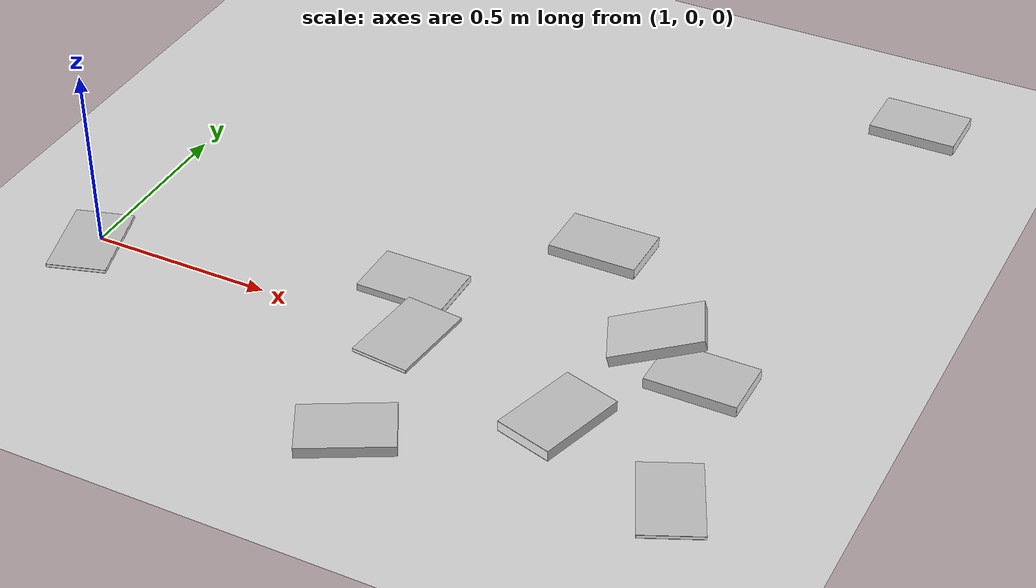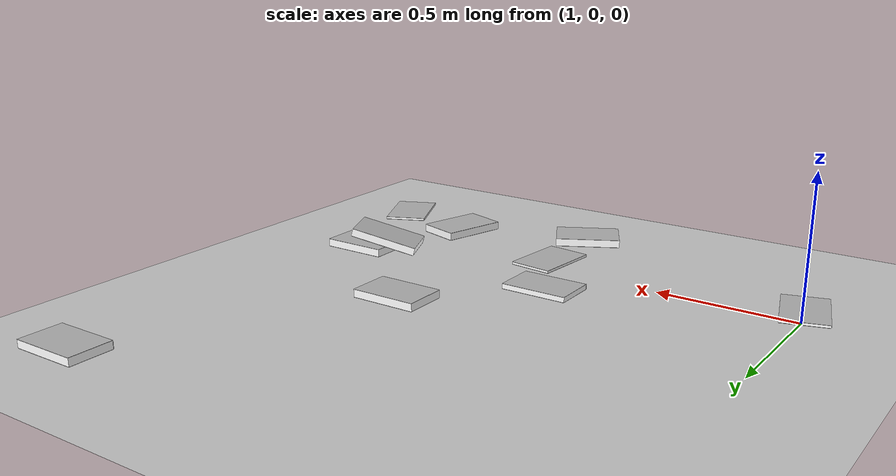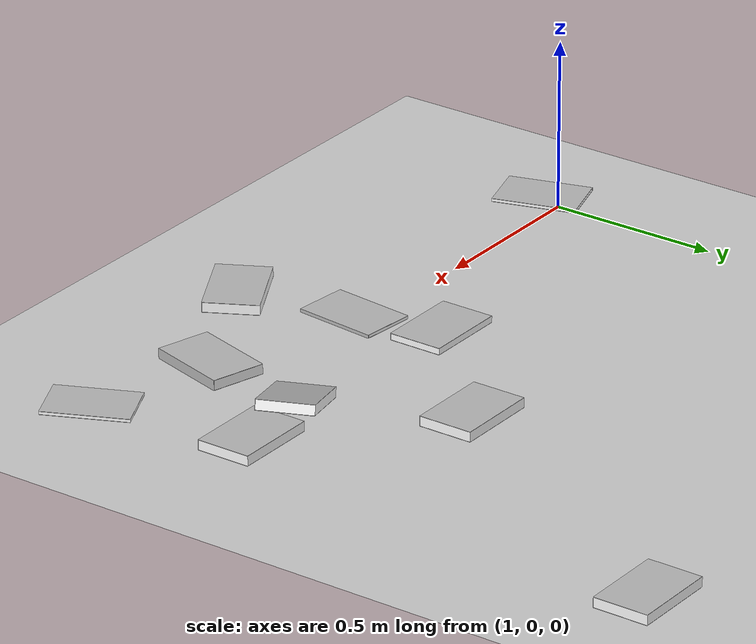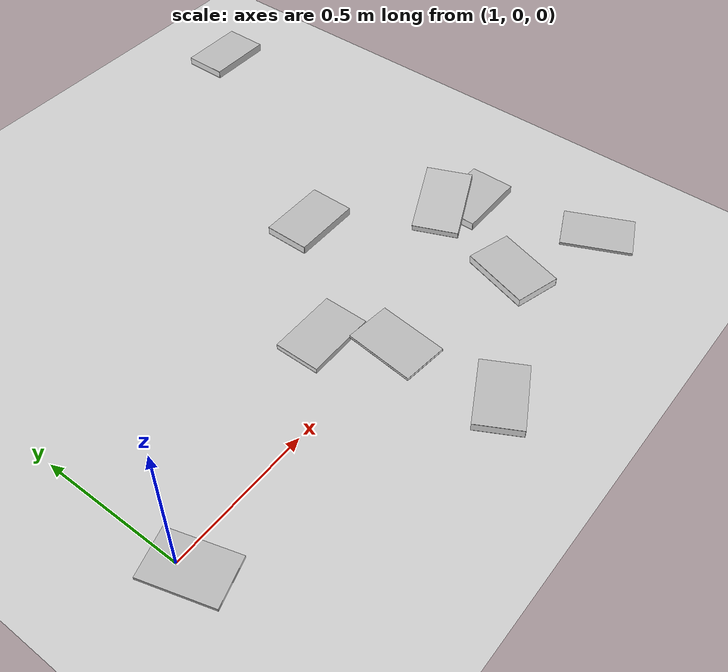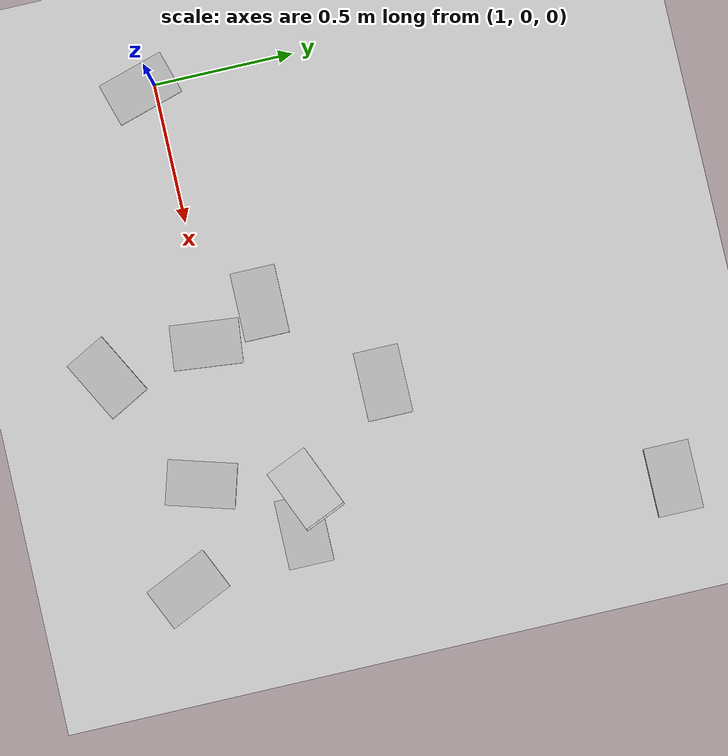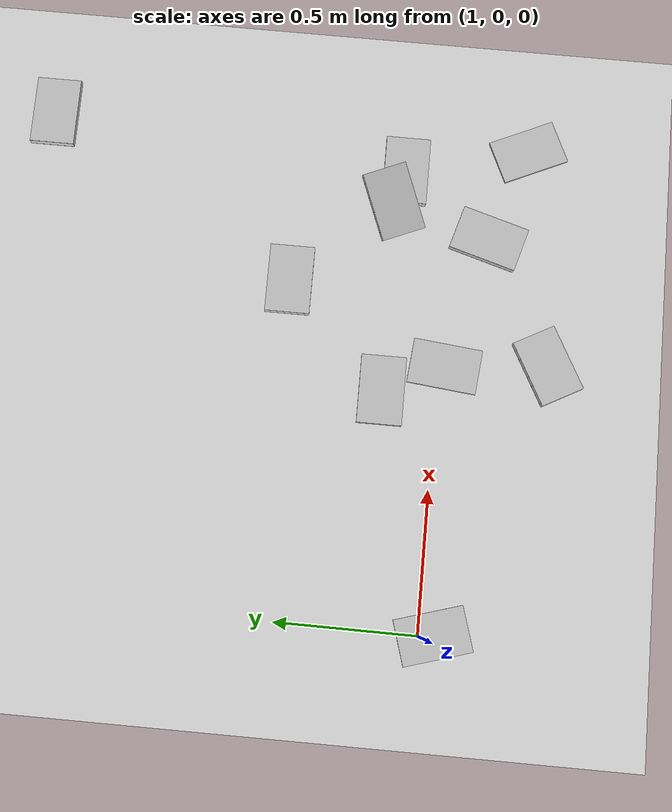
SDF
<sdf version="1.6">
 <world name="default">
  <light name="sun" type="directional">
   <pose>0 0 10 0 -0 0</pose>
   <diffuse>0.8 0.8 0.8 1</diffuse>
   <specular>0.1 0.1 0.1 1</specular>
   <attenuation>
    <range>1000</range>
    <constant>0.9</constant>
    <linear>0.01</linear>
    <quadratic>0.001</quadratic>
   </attenuation>
   <direction>-0.5 0.5 -1</direction>
  </light>
  <model name="ground_plane">
   <static>1</static>
   <link name="link">
    <collision name="collision">
     <geometry><plane><normal>0 0 1</normal><size>100 100</size></plane></geometry>
     <surface><friction><ode><mu>100</mu><mu2>50</mu2></ode></friction></surface>
    </collision>
    <visual name="visual">
     <cast_shadows>0</cast_shadows>
     <geometry><plane><normal>0 0 1</normal><size>100 100</size></plane></geometry>
     <material>
      <script><uri>file://media/materials/scripts/gazebo.material</uri><name>Gazebo/Grey</name></script>
     </material>
    </visual>
   </link>
  </model>
  <gravity>0 0 -9.8</gravity>
  <magnetic_field>6e-06 2.3e-05 -4.2e-05</magnetic_field>
  <atmosphere type="adiabatic"/>
  <physics name="default_physics" default="0" type="ode">
   <max_step_size>0.001</max_step_size>
   <real_time_factor>1</real_time_factor>
   <real_time_update_rate>1000</real_time_update_rate>
  </physics>
  <scene><ambient>0.4 0.4 0.4 1</ambient><background>0.7 0.7 0.7 1</background><shadows>1</shadows></scene>
  <spherical_coordinates>
   <surface_model>EARTH_WGS84</surface_model>
   <latitude_deg>0</latitude_deg>
   <longitude_deg>0</longitude_deg>
   <elevation>0</elevation>
   <heading_deg>0</heading_deg>
  </spherical_coordinates>
  <light name="user_point_light_0" type="point">
   <pose>1.23604 -3.15545 1 0 -0 0</pose>
   <diffuse>0.5 0.5 0.5 1</diffuse>
   <specular>0.1 0.1 0.1 1</specular>
   <attenuation>
    <range>20</range>
    <constant>0.5</constant>
    <linear>0.01</linear>
    <quadratic>0.001</quadratic>
   </attenuation>
   <cast_shadows>0</cast_shadows>
   <direction>0 0 -1</direction>
  </light>
  <light name="user_point_light_1" type="point">
   <pose>4.12323 2.10151 1 0 -0 0</pose>
   <diffuse>0.5 0.5 0.5 1</diffuse>
   <specular>0.1 0.1 0.1 1</specular>
   <attenuation>
    <range>20</range>
    <constant>0.5</constant>
    <linear>0.01</linear>
    <quadratic>0.001</quadratic>
   </attenuation>
   <cast_shadows>0</cast_shadows>
   <direction>0 0 -1</direction>
  </light>
  <light name="user_point_light_2" type="point">
   <pose>-4.26749 -4.21244 1 0 -0 0</pose>
   <diffuse>0.5 0.5 0.5 1</diffuse>
   <specular>0.1 0.1 0.1 1</specular>
   <attenuation>
    <range>20</range>
    <constant>0.5</constant>
    <linear>0.01</linear>
    <quadratic>0.001</quadratic>
   </attenuation>
   <cast_shadows>0</cast_shadows>
   <direction>0 0 -1</direction>
  </light>
  <light name="user_point_light_3" type="point">
   <pose>6.12219 -1.0454 1 0 -0 0</pose>
   <diffuse>0.5 0.5 0.5 1</diffuse>
   <specular>0.1 0.1 0.1 1</specular>
   <attenuation>
    <range>20</range>
    <constant>0.5</constant>
    <linear>0.01</linear>
    <quadratic>0.001</quadratic>
   </attenuation>
   <cast_shadows>0</cast_shadows>
   <direction>0 0 -1</direction>
  </light>
  <model name="book_2">
   <link name="cover">
    <pose>0 -0.000108 0.015405 0 -0 0</pose>
    <visual name="visual">
     <geometry><box><size>0.245 0.16 0.03</size></box></geometry>
     <material>
      <script>
       <uri>model://book_2/materials/scripts</uri>
       <uri>model://book_2/materials/textures</uri>
       <name>book_2</name>
      </script>
     </material>
    </visual>
    <collision name="collision"><geometry><box><size>0.245 0.16 0.03</size></box></geometry></collision>
   </link>
   <link name="page">
    <pose>0 0.000608 0.015405 0 -0 0</pose>
    <visual name="visual">
     <geometry><box><size>0.24502 0.15862 0.028</size></box></geometry>
     <material>
      <lighting>1</lighting>
      <ambient>1 1 1 1</ambient>
      <diffuse>1 1 1 1</diffuse>
      <specular>0.01 0.01 0.01 1</specular>
      <emissive>0 0 0 1</emissive>
      <shader type="vertex"><normal_map>__default__</normal_map></shader>
     </material>
    </visual>
    <collision name="collision"><geometry><box><size>0.245 0.16 0.03</size></box></geometry></collision>
   </link>
   <static>1</static>
   <pose>2.51535 0.207328 0.06237 0 -0.259467 0.404499</pose>
  </model>
  <model name="book_20">
   <link name="cover">
    <pose>0 -0.000108 0.015405 0 -0 0</pose>
    <visual name="visual">
     <geometry><box><size>0.245 0.16 0.03</size></box></geometry>
     <material>
      <script>
       <uri>model://book_20/materials/scripts</uri>
       <uri>model://book_20/materials/textures</uri>
       <name>book_20</name>
      </script>
     </material>
    </visual>
    <collision name="collision"><geometry><box><size>0.245 0.16 0.03</size></box></geometry></collision>
   </link>
   <link name="page">
    <pose>0 0.000608 0.015405 0 -0 0</pose>
    <visual name="visual">
     <geometry><box><size>0.24502 0.15862 0.028</size></box></geometry>
     <material>
      <lighting>1</lighting>
      <ambient>1 1 1 1</ambient>
      <diffuse>1 1 1 1</diffuse>
      <specular>0.01 0.01 0.01 1</specular>
      <emissive>0 0 0 1</emissive>
      <shader type="vertex"><normal_map>__default__</normal_map></shader>
     </material>
    </visual>
    <collision name="collision"><geometry><box><size>0.245 0.16 0.03</size></box></geometry></collision>
   </link>
   <static>1</static>
   <pose>2.41267 -0.146387 0.028678 0 -0 1.28788</pose>
  </model>
  <model name="book_21">
   <link name="cover">
    <pose>0 -0.000108 0.005 0 -0 0</pose>
    <visual name="visual">
     <geometry><box><size>0.245 0.16 0.01</size></box></geometry>
     <material>
      <script>
       <uri>model://book_21/materials/scripts</uri>
       <uri>model://book_21/materials/textures</uri>
       <name>book_21</name>
      </script>
     </material>
    </visual>
    <collision name="collision"><geometry><box><size>0.245 0.16 0.01</size></box></geometry></collision>
   </link>
   <link name="page">
    <pose>0 0.000608 0.005 0 -0 0</pose>
    <visual name="visual">
     <geometry><box><size>0.24502 0.15862 0.008</size></box></geometry>
     <material>
      <lighting>1</lighting>
      <ambient>1 1 1 1</ambient>
      <diffuse>1 1 1 1</diffuse>
      <specular>0.01 0.01 0.01 1</specular>
      <emissive>0 0 0 1</emissive>
      <shader type="vertex"><normal_map>__default__</normal_map></shader>
     </material>
    </visual>
    <collision name="collision"><geometry><box><size>0.245 0.16 0.008</size></box></geometry></collision>
   </link>
   <static>1</static>
   <pose>1.93804 -0.023092 0.025821 0 -0 1.46715</pose>
  </model>
  <model name="book_14">
   <link name="cover">
    <pose>0 -0.000108 0.015405 0 -0 0</pose>
    <visual name="visual">
     <geometry><box><size>0.245 0.16 0.03</size></box></geometry>
     <material>
      <script>
       <uri>model://book_14/materials/scripts</uri>
       <uri>model://book_14/materials/textures</uri>
       <name>book_14</name>
      </script>
     </material>
    </visual>
    <collision name="collision"><geometry><box><size>0.245 0.16 0.03</size></box></geometry></collision>
   </link>
   <link name="page">
    <pose>0 0.000608 0.015405 0 -0 0</pose>
    <visual name="visual">
     <geometry><box><size>0.24502 0.15862 0.028</size></box></geometry>
     <material>
      <lighting>1</lighting>
      <ambient>1 1 1 1</ambient>
      <diffuse>1 1 1 1</diffuse>
      <specular>0.01 0.01 0.01 1</specular>
      <emissive>0 0 0 1</emissive>
      <shader type="vertex"><normal_map>__default__</normal_map></shader>
     </material>
    </visual>
    <collision name="collision"><geometry><box><size>0.245 0.16 0.03</size></box></geometry></collision>
   </link>
   <static>1</static>
   <pose>2.6513 0.166427 0 0 -0 0</pose>
  </model>
  <model name="book_19">
   <link name="cover">
    <pose>0 -0.000108 0.015405 0 -0 0</pose>
    <visual name="visual">
     <geometry><box><size>0.245 0.16 0.03</size></box></geometry>
     <material>
      <script>
       <uri>model://book_19/materials/scripts</uri>
       <uri>model://book_19/materials/textures</uri>
       <name>book_19</name>
      </script>
     </material>
    </visual>
    <collision name="collision"><geometry><box><size>0.245 0.16 0.03</size></box></geometry></collision>
   </link>
   <link name="page">
    <pose>0 0.000608 0.015405 0 -0 0</pose>
    <visual name="visual">
     <geometry><box><size>0.24502 0.15862 0.028</size></box></geometry>
     <material>
      <lighting>1</lighting>
      <ambient>1 1 1 1</ambient>
      <diffuse>1 1 1 1</diffuse>
      <specular>0.01 0.01 0.01 1</specular>
      <emissive>0 0 0 1</emissive>
      <shader type="vertex"><normal_map>__default__</normal_map></shader>
     </material>
    </visual>
    <collision name="collision"><geometry><box><size>0.245 0.16 0.03</size></box></geometry></collision>
   </link>
   <static>1</static>
   <pose>2.20728 0.551632 0 0 -0 0</pose>
  </model>
  <model name="book_13">
   <link name="cover">
    <pose>0 -0.000108 0.015405 0 -0 0</pose>
    <visual name="visual">
     <geometry><box><size>0.245 0.16 0.03</size></box></geometry>
     <material>
      <script>
       <uri>model://book_13/materials/scripts</uri>
       <uri>model://book_13/materials/textures</uri>
       <name>book_13</name>
      </script>
     </material>
    </visual>
    <collision name="collision"><geometry><box><size>0.245 0.16 0.03</size></box></geometry></collision>
   </link>
   <link name="page">
    <pose>0 0.000608 0.015405 0 -0 0</pose>
    <visual name="visual">
     <geometry><box><size>0.24502 0.15862 0.028</size></box></geometry>
     <material>
      <lighting>1</lighting>
      <ambient>1 1 1 1</ambient>
      <diffuse>1 1 1 1</diffuse>
      <specular>0.01 0.01 0.01 1</specular>
      <emissive>0 0 0 1</emissive>
      <shader type="vertex"><normal_map>__default__</normal_map></shader>
     </material>
    </visual>
    <collision name="collision"><geometry><box><size>0.245 0.16 0.03</size></box></geometry></collision>
   </link>
   <static>1</static>
   <pose>1.9742 -0.387899 0 0 -0 0.493941</pose>
  </model>
  <model name="book_3">
   <link name="cover">
    <pose>0 -0.000108 0.01 0 -0 0</pose>
    <visual name="visual">
     <geometry><box><size>0.245 0.16 0.02</size></box></geometry>
     <material>
      <script>
       <uri>model://book_3/materials/scripts</uri>
       <uri>model://book_3/materials/textures</uri>
       <name>book_3</name>
      </script>
     </material>
    </visual>
    <collision name="collision"><geometry><box><size>0.245 0.16 0.02</size></box></geometry></collision>
   </link>
   <link name="page">
    <pose>0 0.000608 0.01 0 -0 0</pose>
    <visual name="visual">
     <geometry><box><size>0.24502 0.15862 0.018</size></box></geometry>
     <material>
      <lighting>1</lighting>
      <ambient>1 1 1 1</ambient>
      <diffuse>1 1 1 1</diffuse>
      <specular>0.01 0.01 0.01 1</specular>
      <emissive>0 0 0 1</emissive>
      <shader type="vertex"><normal_map>__default__</normal_map></shader>
     </material>
    </visual>
    <collision name="collision"><geometry><box><size>0.245 0.16 0.018</size></box></geometry></collision>
   </link>
   <static>1</static>
   <pose>1.83698 0.191669 0 0 -0 0</pose>
  </model>
  <model name="book_7">
   <link name="cover">
    <pose>0 -0.000108 0.005 0 -0 0</pose>
    <visual name="visual">
     <geometry><box><size>0.245 0.16 0.01</size></box></geometry>
     <material>
      <script>
       <uri>model://book_7/materials/scripts</uri>
       <uri>model://book_7/materials/textures</uri>
       <name>book_7</name>
      </script>
     </material>
    </visual>
    <collision name="collision"><geometry><box><size>0.245 0.16 0.01</size></box></geometry></collision>
   </link>
   <link name="page">
    <pose>0 0.000608 0.005 0 -0 0</pose>
    <visual name="visual">
     <geometry><box><size>0.24502 0.15862 0.008</size></box></geometry>
     <material>
      <lighting>1</lighting>
      <ambient>1 1 1 1</ambient>
      <diffuse>1 1 1 1</diffuse>
      <specular>0.01 0.01 0.01 1</specular>
      <emissive>0 0 0 1</emissive>
      <shader type="vertex"><normal_map>__default__</normal_map></shader>
     </material>
    </visual>
    <collision name="collision"><geometry><box><size>0.245 0.16 0.008</size></box></geometry></collision>
   </link>
   <static>1</static>
   <pose>2.75992 -0.272671 0.01856 0 0 -1.14178</pose>
  </model>
  <model name="book_16">
   <link name="cover">
    <pose>0 -0.000108 0.015405 0 -0 0</pose>
    <visual name="visual">
     <geometry><box><size>0.245 0.16 0.03</size></box></geometry>
     <material>
      <script>
       <uri>model://book_16/materials/scripts</uri>
       <uri>model://book_16/materials/textures</uri>
       <name>book_16</name>
      </script>
     </material>
    </visual>
    <collision name="collision"><geometry><box><size>0.245 0.16 0.03</size></box></geometry></collision>
   </link>
   <link name="page">
    <pose>0 0.000608 0.015405 0 -0 0</pose>
    <visual name="visual">
     <geometry><box><size>0.24502 0.15862 0.028</size></box></geometry>
     <material>
      <lighting>1</lighting>
      <ambient>1 1 1 1</ambient>
      <diffuse>1 1 1 1</diffuse>
      <specular>0.01 0.01 0.01 1</specular>
      <emissive>0 0 0 1</emissive>
      <shader type="vertex"><normal_map>__default__</normal_map></shader>
     </material>
    </visual>
    <collision name="collision"><geometry><box><size>0.245 0.16 0.03</size></box></geometry></collision>
   </link>
   <static>1</static>
   <pose>2.76188 1.46768 0 0 -0 0</pose>
  </model>
  <model name="book_21_0">
   <link name="cover">
    <pose>0 -0.000108 0.005 0 -0 0</pose>
    <visual name="visual">
     <geometry><box><size>0.245 0.16 0.01</size></box></geometry>
     <material>
      <script>
       <uri>model://book_21/materials/scripts</uri>
       <uri>model://book_21/materials/textures</uri>
       <name>book_21</name>
      </script>
     </material>
    </visual>
    <collision name="collision"><geometry><box><size>0.245 0.16 0.01</size></box></geometry></collision>
   </link>
   <link name="page">
    <pose>0 0.000608 0.005 0 -0 0</pose>
    <visual name="visual">
     <geometry><box><size>0.24502 0.15862 0.008</size></box></geometry>
     <material>
      <lighting>1</lighting>
      <ambient>1 1 1 1</ambient>
      <diffuse>1 1 1 1</diffuse>
      <specular>0.01 0.01 0.01 1</specular>
      <emissive>0 0 0 1</emissive>
      <shader type="vertex"><normal_map>__default__</normal_map></shader>
     </material>
    </visual>
    <collision name="collision"><geometry><box><size>0.245 0.16 0.008</size></box></geometry></collision>
   </link>
   <static>1</static>
   <pose>1.00607 -0.04975 0.022461 0 0 -1.27767</pose>
  </model>
  <light name="user_spot_light_0" type="spot">
   <pose>2.85611 -3.53544 1 0 -0 0</pose>
   <diffuse>0.5 0.5 0.5 1</diffuse>
   <specular>0.1 0.1 0.1 1</specular>
   <direction>0 0 -1</direction>
   <attenuation>
    <range>20</range>
    <constant>0.5</constant>
    <linear>0.01</linear>
    <quadratic>0.001</quadratic>
   </attenuation>
   <cast_shadows>0</cast_shadows>
   <spot><inner_angle>0.6</inner_angle><outer_angle>1</outer_angle><falloff>1</falloff></spot>
  </light>
  <light name="user_spot_light_1" type="spot">
   <pose>1.07795 -3.59068 1 0 -0 0</pose>
   <diffuse>0.5 0.5 0.5 1</diffuse>
   <specular>0.1 0.1 0.1 1</specular>
   <direction>0 0 -1</direction>
   <attenuation>
    <range>20</range>
    <constant>0.5</constant>
    <linear>0.01</linear>
    <quadratic>0.001</quadratic>
   </attenuation>
   <cast_shadows>0</cast_shadows>
   <spot><inner_angle>0.6</inner_angle><outer_angle>1</outer_angle><falloff>1</falloff></spot>
  </light>
 </world>
</sdf>
